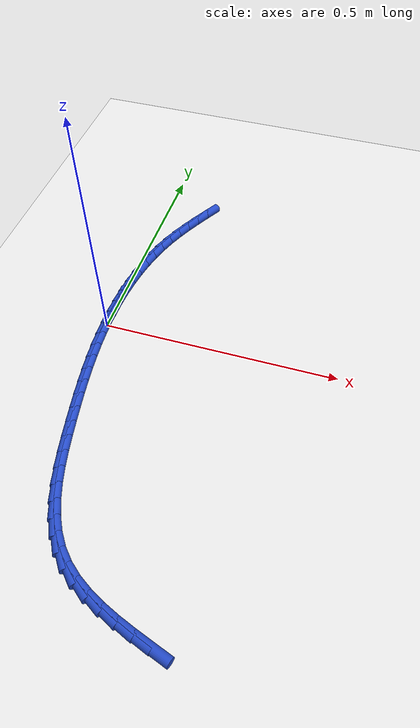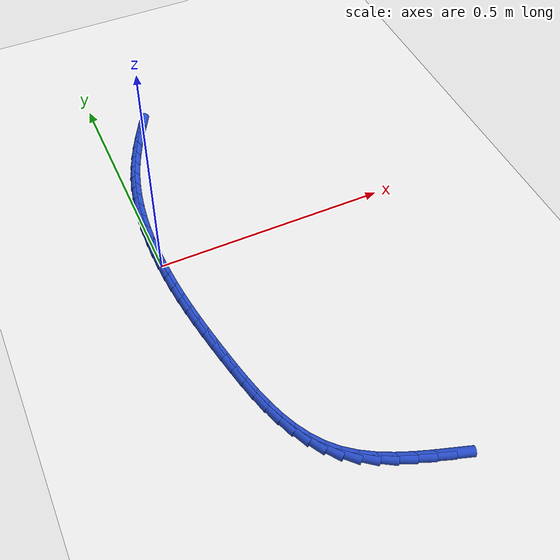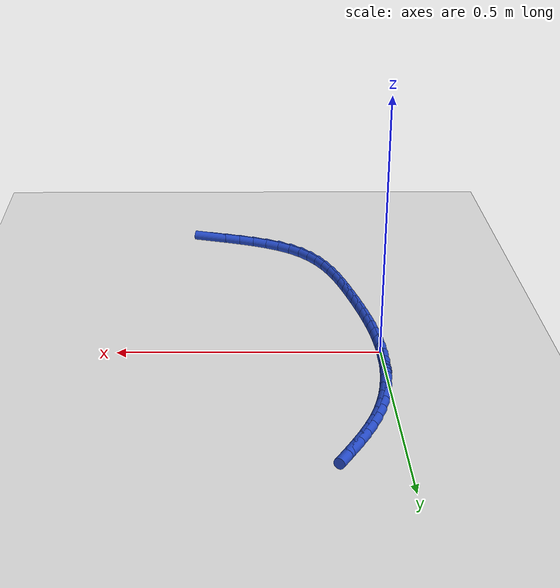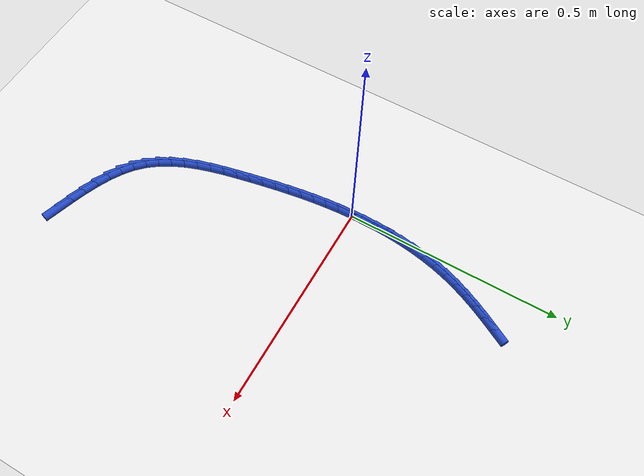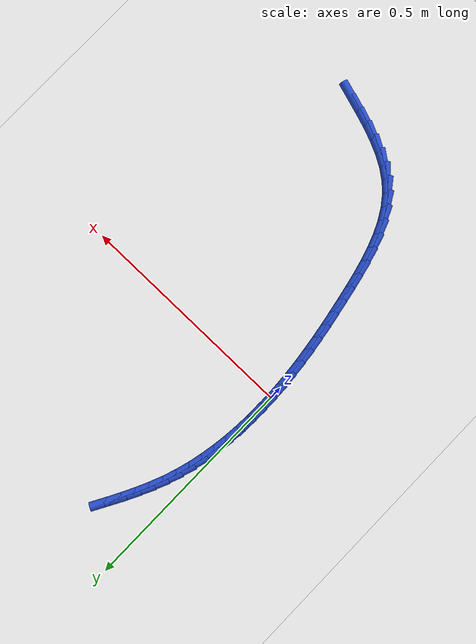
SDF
<sdf version="1.6">
 <world name="default">
  <model name="ground_plane">
   <static>1</static>
   <link name="link">
    <collision name="collision">
     <geometry><plane><normal>0 0 1</normal><size>100 100</size></plane></geometry>
     <surface><friction><ode><mu>100</mu><mu2>50</mu2></ode></friction></surface>
    </collision>
    <visual name="visual">
     <cast_shadows>0</cast_shadows>
     <geometry><plane><normal>0 0 1</normal><size>100 100</size></plane></geometry>
     <material>
      <script><uri>file://media/materials/scripts/gazebo.material</uri><name>Gazebo/WhiteGlow</name></script>
     </material>
    </visual>
   </link>
  </model>
  <model name="line">
   <link name="link_0">
    <pose>1.6046192152785466e-17 4.163336342344337e-17 0.01 0 1.57 -1.5580116349688842</pose>
    <collision name="collision">
     <geometry><cylinder><radius>0.01</radius><length>0.08</length></cylinder></geometry>
    </collision>
    <visual name="visual">
     <material>
      <script><name>Gazebo/Blue</name><uri>file://media/materials/scripts/gazebo.material</uri></script>
     </material>
     <geometry><cylinder><radius>0.01</radius><length>0.08</length></cylinder></geometry>
    </visual>
   </link>
   <link name="link_1">
    <pose>-0.0004028578113779699 0.03150923524843937 0.01 0 1.57 1.5500419713608988</pose>
    <collision name="collision">
     <geometry><cylinder><radius>0.01</radius><length>0.08</length></cylinder></geometry>
    </collision>
    <visual name="visual">
     <material>
      <script><name>Gazebo/Blue</name><uri>file://media/materials/scripts/gazebo.material</uri></script>
     </material>
     <geometry><cylinder><radius>0.01</radius><length>0.08</length></cylinder></geometry>
    </visual>
   </link>
   <link name="link_2">
    <pose>0.0002549822827416621 0.06320116806231396 0.01 0 1.57 1.514115044767548</pose>
    <collision name="collision">
     <geometry><cylinder><radius>0.01</radius><length>0.08</length></cylinder></geometry>
    </collision>
    <visual name="visual">
     <material>
      <script><name>Gazebo/Blue</name><uri>file://media/materials/scripts/gazebo.material</uri></script>
     </material>
     <geometry><cylinder><radius>0.01</radius><length>0.08</length></cylinder></geometry>
    </visual>
   </link>
   <link name="link_3">
    <pose>0.002056200469738638 0.09494513616142236 0.01 0 1.57 1.475483794887779</pose>
    <collision name="collision">
     <geometry><cylinder><radius>0.01</radius><length>0.08</length></cylinder></geometry>
    </collision>
    <visual name="visual">
     <material>
      <script><name>Gazebo/Blue</name><uri>file://media/materials/scripts/gazebo.material</uri></script>
     </material>
     <geometry><cylinder><radius>0.01</radius><length>0.08</length></cylinder></geometry>
    </visual>
   </link>
   <link name="link_4">
    <pose>0.005083476936992688 0.126610477265563 0.01 0 1.57 1.4338159709183687</pose>
    <collision name="collision">
     <geometry><cylinder><radius>0.01</radius><length>0.08</length></cylinder></geometry>
    </collision>
    <visual name="visual">
     <material>
      <script><name>Gazebo/Blue</name><uri>file://media/materials/scripts/gazebo.material</uri></script>
     </material>
     <geometry><cylinder><radius>0.01</radius><length>0.08</length></cylinder></geometry>
    </visual>
   </link>
   <link name="link_5">
    <pose>0.00941949187188354 0.15806652909453447 0.01 0 1.57 1.3887672596449638</pose>
    <collision name="collision">
     <geometry><cylinder><radius>0.01</radius><length>0.08</length></cylinder></geometry>
    </collision>
    <visual name="visual">
     <material>
      <script><name>Gazebo/Blue</name><uri>file://media/materials/scripts/gazebo.material</uri></script>
     </material>
     <geometry><cylinder><radius>0.01</radius><length>0.08</length></cylinder></geometry>
    </visual>
   </link>
   <link name="link_6">
    <pose>0.015146925461790925 0.1891826293681352 0.01 0 1.57 1.3399892176934058</pose>
    <collision name="collision">
     <geometry><cylinder><radius>0.01</radius><length>0.08</length></cylinder></geometry>
    </collision>
    <visual name="visual">
     <material>
      <script><name>Gazebo/Blue</name><uri>file://media/materials/scripts/gazebo.material</uri></script>
     </material>
     <geometry><cylinder><radius>0.01</radius><length>0.08</length></cylinder></geometry>
    </visual>
   </link>
   <link name="link_7">
    <pose>0.02234845789409457 0.2198281158061638 0.01 0 1.57 1.287142812539969</pose>
    <collision name="collision">
     <geometry><cylinder><radius>0.01</radius><length>0.08</length></cylinder></geometry>
    </collision>
    <visual name="visual">
     <material>
      <script><name>Gazebo/Blue</name><uri>file://media/materials/scripts/gazebo.material</uri></script>
     </material>
     <geometry><cylinder><radius>0.01</radius><length>0.08</length></cylinder></geometry>
    </visual>
   </link>
   <link name="link_8">
    <pose>0.031106769356174187 0.2498723261284186 0.01 0 1.57 1.2306585767418146</pose>
    <collision name="collision">
     <geometry><cylinder><radius>0.01</radius><length>0.08</length></cylinder></geometry>
    </collision>
    <visual name="visual">
     <material>
      <script><name>Gazebo/Blue</name><uri>file://media/materials/scripts/gazebo.material</uri></script>
     </material>
     <geometry><cylinder><radius>0.01</radius><length>0.08</length></cylinder></geometry>
    </visual>
   </link>
   <link name="link_9">
    <pose>0.04148562995236788 0.27920009940941104 0.01 0 1.57 1.178217019345103</pose>
    <collision name="collision">
     <geometry><cylinder><radius>0.01</radius><length>0.08</length></cylinder></geometry>
    </collision>
    <visual name="visual">
     <material>
      <script><name>Gazebo/Blue</name><uri>file://media/materials/scripts/gazebo.material</uri></script>
     </material>
     <geometry><cylinder><radius>0.01</radius><length>0.08</length></cylinder></geometry>
    </visual>
   </link>
   <link name="link_10">
    <pose>0.053351953241081086 0.30785764594234605 0.01 0 1.57 1.1348469808931223</pose>
    <collision name="collision">
     <geometry><cylinder><radius>0.01</radius><length>0.08</length></cylinder></geometry>
    </collision>
    <visual name="visual">
     <material>
      <script><name>Gazebo/Blue</name><uri>file://media/materials/scripts/gazebo.material</uri></script>
     </material>
     <geometry><cylinder><radius>0.01</radius><length>0.08</length></cylinder></geometry>
    </visual>
   </link>
   <link name="link_11">
    <pose>0.06645576918653144 0.3359869901979562 0.01 0 1.57 1.1008944626769803</pose>
    <collision name="collision">
     <geometry><cylinder><radius>0.01</radius><length>0.08</length></cylinder></geometry>
    </collision>
    <visual name="visual">
     <material>
      <script><name>Gazebo/Blue</name><uri>file://media/materials/scripts/gazebo.material</uri></script>
     </material>
     <geometry><cylinder><radius>0.01</radius><length>0.08</length></cylinder></geometry>
    </visual>
   </link>
   <link name="link_12">
    <pose>0.08054556777313687 0.3637314190302788 0.01 0 1.57 1.076430242443896</pose>
    <collision name="collision">
     <geometry><cylinder><radius>0.01</radius><length>0.08</length></cylinder></geometry>
    </collision>
    <visual name="visual">
     <material>
      <script><name>Gazebo/Blue</name><uri>file://media/materials/scripts/gazebo.material</uri></script>
     </material>
     <geometry><cylinder><radius>0.01</radius><length>0.08</length></cylinder></geometry>
    </visual>
   </link>
   <link name="link_13">
    <pose>0.09536983898531506 0.39123421929335106 0.01 0 1.57 1.061399354472699</pose>
    <collision name="collision">
     <geometry><cylinder><radius>0.01</radius><length>0.08</length></cylinder></geometry>
    </collision>
    <visual name="visual">
     <material>
      <script><name>Gazebo/Blue</name><uri>file://media/materials/scripts/gazebo.material</uri></script>
     </material>
     <geometry><cylinder><radius>0.01</radius><length>0.08</length></cylinder></geometry>
    </visual>
   </link>
   <link name="link_217">
    <pose>0.31963514014237826 -0.5894473782804562 0.01 0 1.57 -0.3028919456985769</pose>
    <collision name="collision">
     <geometry><cylinder><radius>0.01</radius><length>0.08</length></cylinder></geometry>
    </collision>
    <visual name="visual">
     <material>
      <script><name>Gazebo/Blue</name><uri>file://media/materials/scripts/gazebo.material</uri></script>
     </material>
     <geometry><cylinder><radius>0.01</radius><length>0.08</length></cylinder></geometry>
    </visual>
   </link>
   <link name="link_218">
    <pose>0.28684257454668016 -0.5791994467832247 0.01 0 1.57 -0.32928752448398274</pose>
    <collision name="collision">
     <geometry><cylinder><radius>0.01</radius><length>0.08</length></cylinder></geometry>
    </collision>
    <visual name="visual">
     <material>
      <script><name>Gazebo/Blue</name><uri>file://media/materials/scripts/gazebo.material</uri></script>
     </material>
     <geometry><cylinder><radius>0.01</radius><length>0.08</length></cylinder></geometry>
    </visual>
   </link>
   <link name="link_219">
    <pose>0.2547228286309753 -0.5682231982552965 0.01 0 1.57 -0.3741304111532505</pose>
    <collision name="collision">
     <geometry><cylinder><radius>0.01</radius><length>0.08</length></cylinder></geometry>
    </collision>
    <visual name="visual">
     <material>
      <script><name>Gazebo/Blue</name><uri>file://media/materials/scripts/gazebo.material</uri></script>
     </material>
     <geometry><cylinder><radius>0.01</radius><length>0.08</length></cylinder></geometry>
    </visual>
   </link>
   <link name="link_220">
    <pose>0.2237684044194674 -0.5560697919023828 0.01 0 1.57 -0.43964050506916924</pose>
    <collision name="collision">
     <geometry><cylinder><radius>0.01</radius><length>0.08</length></cylinder></geometry>
    </collision>
    <visual name="visual">
     <material>
      <script><name>Gazebo/Blue</name><uri>file://media/materials/scripts/gazebo.material</uri></script>
     </material>
     <geometry><cylinder><radius>0.01</radius><length>0.08</length></cylinder></geometry>
    </visual>
   </link>
   <link name="link_221">
    <pose>0.19447180393636043 -0.5422903869301943 0.01 0 1.57 -0.528594236149313</pose>
    <collision name="collision">
     <geometry><cylinder><radius>0.01</radius><length>0.08</length></cylinder></geometry>
    </collision>
    <visual name="visual">
     <material>
      <script><name>Gazebo/Blue</name><uri>file://media/materials/scripts/gazebo.material</uri></script>
     </material>
     <geometry><cylinder><radius>0.01</radius><length>0.08</length></cylinder></geometry>
    </visual>
   </link>
   <link name="link_222">
    <pose>0.16732552920585833 -0.5264361425444423 0.01 0 1.57 -0.6435099728804766</pose>
    <collision name="collision">
     <geometry><cylinder><radius>0.01</radius><length>0.08</length></cylinder></geometry>
    </collision>
    <visual name="visual">
     <material>
      <script><name>Gazebo/Blue</name><uri>file://media/materials/scripts/gazebo.material</uri></script>
     </material>
     <geometry><cylinder><radius>0.01</radius><length>0.08</length></cylinder></geometry>
    </visual>
   </link>
   <link name="link_223">
    <pose>0.14282208225216433 -0.5080582179508369 0.01 0 1.57 -0.7834853981505624</pose>
    <collision name="collision">
     <geometry><cylinder><radius>0.01</radius><length>0.08</length></cylinder></geometry>
    </collision>
    <visual name="visual">
     <material>
      <script><name>Gazebo/Blue</name><uri>file://media/materials/scripts/gazebo.material</uri></script>
     </material>
     <geometry><cylinder><radius>0.01</radius><length>0.08</length></cylinder></geometry>
    </visual>
   </link>
   <link name="link_224">
    <pose>0.12142260150785028 -0.48674044538374717 0.01 0 1.57 -0.9233545265637041</pose>
    <collision name="collision">
     <geometry><cylinder><radius>0.01</radius><length>0.08</length></cylinder></geometry>
    </collision>
    <visual name="visual">
     <material>
      <script><name>Gazebo/Blue</name><uri>file://media/materials/scripts/gazebo.material</uri></script>
     </material>
     <geometry><cylinder><radius>0.01</radius><length>0.08</length></cylinder></geometry>
    </visual>
   </link>
   <link name="link_225">
    <pose>0.10312767850573391 -0.4625464319142133 0.01 0 1.57 -1.0427565175480469</pose>
    <collision name="collision">
     <geometry><cylinder><radius>0.01</radius><length>0.08</length></cylinder></geometry>
    </collision>
    <visual name="visual">
     <material>
      <script><name>Gazebo/Blue</name><uri>file://media/materials/scripts/gazebo.material</uri></script>
     </material>
     <geometry><cylinder><radius>0.01</radius><length>0.08</length></cylinder></geometry>
    </visual>
   </link>
   <link name="link_226">
    <pose>0.08758779509439132 -0.43590451145578796 0.01 0 1.57 -1.1407232179113242</pose>
    <collision name="collision">
     <geometry><cylinder><radius>0.01</radius><length>0.08</length></cylinder></geometry>
    </collision>
    <visual name="visual">
     <material>
      <script><name>Gazebo/Blue</name><uri>file://media/materials/scripts/gazebo.material</uri></script>
     </material>
     <geometry><cylinder><radius>0.01</radius><length>0.08</length></cylinder></geometry>
    </visual>
   </link>
   <link name="link_227">
    <pose>0.07444467874119962 -0.4072521378006118 0.01 0 1.57 -1.2187105148408517</pose>
    <collision name="collision">
     <geometry><cylinder><radius>0.01</radius><length>0.08</length></cylinder></geometry>
    </collision>
    <visual name="visual">
     <material>
      <script><name>Gazebo/Blue</name><uri>file://media/materials/scripts/gazebo.material</uri></script>
     </material>
     <geometry><cylinder><radius>0.01</radius><length>0.08</length></cylinder></geometry>
    </visual>
   </link>
   <link name="link_228">
    <pose>0.06334005691353592 -0.3770267647408256 0.01 0 1.57 -1.2788679013545747</pose>
    <collision name="collision">
     <geometry><cylinder><radius>0.01</radius><length>0.08</length></cylinder></geometry>
    </collision>
    <visual name="visual">
     <material>
      <script><name>Gazebo/Blue</name><uri>file://media/materials/scripts/gazebo.material</uri></script>
     </material>
     <geometry><cylinder><radius>0.01</radius><length>0.08</length></cylinder></geometry>
    </visual>
   </link>
   <link name="link_229">
    <pose>0.05391565707877742 -0.34566584606856987 0.01 0 1.57 -1.3232447275499353</pose>
    <collision name="collision">
     <geometry><cylinder><radius>0.01</radius><length>0.08</length></cylinder></geometry>
    </collision>
    <visual name="visual">
     <material>
      <script><name>Gazebo/Blue</name><uri>file://media/materials/scripts/gazebo.material</uri></script>
     </material>
     <geometry><cylinder><radius>0.01</radius><length>0.08</length></cylinder></geometry>
    </visual>
   </link>
   <link name="link_230">
    <pose>0.04581320670430104 -0.31360683557598446 0.01 0 1.57 -1.3534065229825074</pose>
    <collision name="collision">
     <geometry><cylinder><radius>0.01</radius><length>0.08</length></cylinder></geometry>
    </collision>
    <visual name="visual">
     <material>
      <script><name>Gazebo/Blue</name><uri>file://media/materials/scripts/gazebo.material</uri></script>
     </material>
     <geometry><cylinder><radius>0.01</radius><length>0.08</length></cylinder></geometry>
    </visual>
   </link>
   <link name="link_231">
    <pose>0.038674433257484334 -0.2812871870552118 0.01 0 1.57 -1.3703421884051696</pose>
    <collision name="collision">
     <geometry><cylinder><radius>0.01</radius><length>0.08</length></cylinder></geometry>
    </collision>
    <visual name="visual">
     <material>
      <script><name>Gazebo/Blue</name><uri>file://media/materials/scripts/gazebo.material</uri></script>
     </material>
     <geometry><cylinder><radius>0.01</radius><length>0.08</length></cylinder></geometry>
    </visual>
   </link>
   <link name="link_232">
    <pose>0.032143060694885366 -0.24914189702463477 0.01 0 1.57 -1.3799495264820736</pose>
    <collision name="collision">
     <geometry><cylinder><radius>0.01</radius><length>0.08</length></cylinder></geometry>
    </collision>
    <visual name="visual">
     <material>
      <script><name>Gazebo/Blue</name><uri>file://media/materials/scripts/gazebo.material</uri></script>
     </material>
     <geometry><cylinder><radius>0.01</radius><length>0.08</length></cylinder></geometry>
    </visual>
   </link>
   <link name="link_233">
    <pose>0.026014345370614703 -0.2174194563168771 0.01 0 1.57 -1.3917817004812156</pose>
    <collision name="collision">
     <geometry><cylinder><radius>0.01</radius><length>0.08</length></cylinder></geometry>
    </collision>
    <visual name="visual">
     <material>
      <script><name>Gazebo/Blue</name><uri>file://media/materials/scripts/gazebo.material</uri></script>
     </material>
     <geometry><cylinder><radius>0.01</radius><length>0.08</length></cylinder></geometry>
    </visual>
   </link>
   <link name="link_234">
    <pose>0.02033875605406089 -0.18605424097924558 0.01 0 1.57 -1.406789198385033</pose>
    <collision name="collision">
     <geometry><cylinder><radius>0.01</radius><length>0.08</length></cylinder></geometry>
    </collision>
    <visual name="visual">
     <material>
      <script><name>Gazebo/Blue</name><uri>file://media/materials/scripts/gazebo.material</uri></script>
     </material>
     <geometry><cylinder><radius>0.01</radius><length>0.08</length></cylinder></geometry>
    </visual>
   </link>
   <link name="link_235">
    <pose>0.015191277275281212 -0.15495045312377395 0.01 0 1.57 -1.424953194217062</pose>
    <collision name="collision">
     <geometry><cylinder><radius>0.01</radius><length>0.08</length></cylinder></geometry>
    </collision>
    <visual name="visual">
     <material>
      <script><name>Gazebo/Blue</name><uri>file://media/materials/scripts/gazebo.material</uri></script>
     </material>
     <geometry><cylinder><radius>0.01</radius><length>0.08</length></cylinder></geometry>
    </visual>
   </link>
   <link name="link_236">
    <pose>0.010646893564332962 -0.12401229486249618 0.01 0 1.57 -1.4461937120337929</pose>
    <collision name="collision">
     <geometry><cylinder><radius>0.01</radius><length>0.08</length></cylinder></geometry>
    </collision>
    <visual name="visual">
     <material>
      <script><name>Gazebo/Blue</name><uri>file://media/materials/scripts/gazebo.material</uri></script>
     </material>
     <geometry><cylinder><radius>0.01</radius><length>0.08</length></cylinder></geometry>
    </visual>
   </link>
   <link name="link_237">
    <pose>0.006780589451273425 -0.09314396830744605 0.01 0 1.57 -1.470364647986527</pose>
    <collision name="collision">
     <geometry><cylinder><radius>0.01</radius><length>0.08</length></cylinder></geometry>
    </collision>
    <visual name="visual">
     <material>
      <script><name>Gazebo/Blue</name><uri>file://media/materials/scripts/gazebo.material</uri></script>
     </material>
     <geometry><cylinder><radius>0.01</radius><length>0.08</length></cylinder></geometry>
    </visual>
   </link>
   <link name="link_238">
    <pose>0.00366734946615983 -0.06224967557065673 0.01 0 1.57 -1.4972515245524172</pose>
    <collision name="collision">
     <geometry><cylinder><radius>0.01</radius><length>0.08</length></cylinder></geometry>
    </collision>
    <visual name="visual">
     <material>
      <script><name>Gazebo/Blue</name><uri>file://media/materials/scripts/gazebo.material</uri></script>
     </material>
     <geometry><cylinder><radius>0.01</radius><length>0.08</length></cylinder></geometry>
    </visual>
   </link>
   <link name="link_239">
    <pose>0.0013821581390496256 -0.03123361876416369 0.01 0 1.57 -1.5265729212821255</pose>
    <collision name="collision">
     <geometry><cylinder><radius>0.01</radius><length>0.08</length></cylinder></geometry>
    </collision>
    <visual name="visual">
     <material>
      <script><name>Gazebo/Blue</name><uri>file://media/materials/scripts/gazebo.material</uri></script>
     </material>
     <geometry><cylinder><radius>0.01</radius><length>0.08</length></cylinder></geometry>
    </visual>
   </link>
   <link name="link_240">
    <pose>1.431146867680866e-17 2.0816681711721685e-17 0.01 0 1.57 -1.5579862786579075</pose>
    <collision name="collision">
     <geometry><cylinder><radius>0.01</radius><length>0.08</length></cylinder></geometry>
    </collision>
    <visual name="visual">
     <material>
      <script><name>Gazebo/Blue</name><uri>file://media/materials/scripts/gazebo.material</uri></script>
     </material>
     <geometry><cylinder><radius>0.01</radius><length>0.08</length></cylinder></geometry>
    </visual>
   </link>
   <link name="link_241">
    <pose>-0.00040414042093171515 0.031546978609800484 0.01 0 1.57 1.5504943519048267</pose>
    <collision name="collision">
     <geometry><cylinder><radius>0.01</radius><length>0.08</length></cylinder></geometry>
    </collision>
    <visual name="visual">
     <material>
      <script><name>Gazebo/Blue</name><uri>file://media/materials/scripts/gazebo.material</uri></script>
     </material>
     <geometry><cylinder><radius>0.01</radius><length>0.08</length></cylinder></geometry>
    </visual>
   </link>
   <link name="link_242">
    <pose>0.0002447214063117341 0.06350311495320382 0.01 0 1.57 1.5669426544977907</pose>
    <collision name="collision">
     <geometry><cylinder><radius>0.01</radius><length>0.08</length></cylinder></geometry>
    </collision>
    <visual name="visual">
     <material>
      <script><name>Gazebo/Blue</name><uri>file://media/materials/scripts/gazebo.material</uri></script>
     </material>
     <geometry><cylinder><radius>0.01</radius><length>0.08</length></cylinder></geometry>
    </visual>
   </link>
  </model>
 </world>
</sdf>
